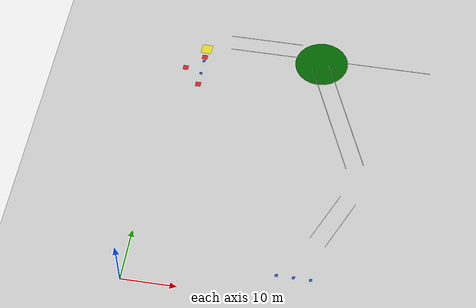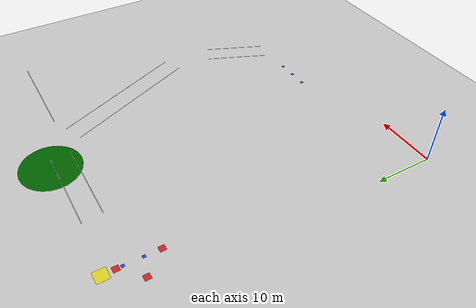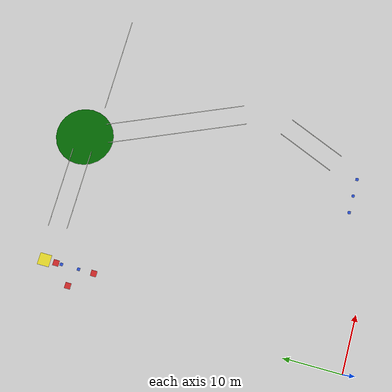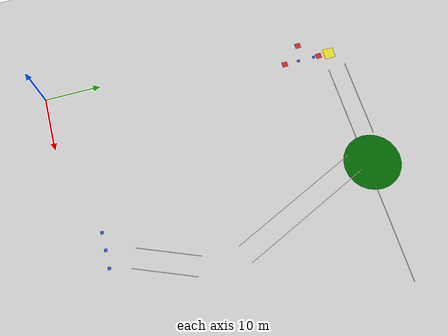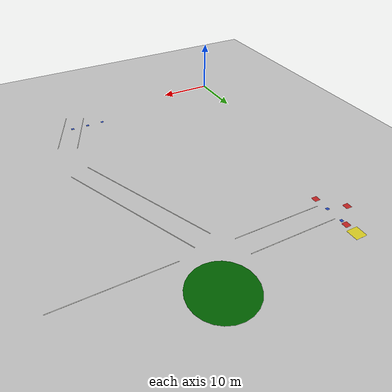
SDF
<sdf version="1.6">
 <world name="default">
  <model name="ground_plane">
   <static>1</static>
   <link name="link">
    <collision name="collision">
     <geometry><plane><normal>0 0 1</normal><size>100 100</size></plane></geometry>
     <surface><friction><ode><mu>100</mu><mu2>50</mu2></ode></friction></surface>
    </collision>
    <visual name="visual">
     <cast_shadows>0</cast_shadows>
     <geometry><plane><normal>0 0 1</normal><size>100 100</size></plane></geometry>
     <material>
      <script><uri>file://media/materials/scripts/gazebo.material</uri><name>Gazebo/Grey</name></script>
     </material>
    </visual>
   </link>
  </model>
  <model name="my_objectT3">
   <link name="my_box">
    <inertial>
     <mass>1</mass>
     <inertia><ixx>1</ixx><ixy>0</ixy><ixz>0</ixz><iyy>100</iyy><iyz>0</iyz><izz>1</izz></inertia>
    </inertial>
    <collision name="my_box_collision"><geometry><box><size>2 2 0.01</size></box></geometry></collision>
    <visual name="my_box_visual">
     <geometry><box><size>2 2 0.01</size></box></geometry>
     <material>
      <script><name>Gazebo/Yellow</name><uri>file://media/materials/scripts/gazebo.material</uri></script>
     </material>
    </visual>
   </link>
   <pose>5.00076 52.4982 0.115002 3e-05 7e-06 -0.000126</pose>
  </model>
  <model name="my_objecteg1w1">
   <link name="my_box">
    <inertial>
     <mass>1</mass>
     <inertia><ixx>1</ixx><ixy>0</ixy><ixz>0</ixz><iyy>100</iyy><iyz>0</iyz><izz>1</izz></inertia>
    </inertial>
    <collision name="my_box_collision"><geometry><box><size>1 1 0.01</size></box></geometry></collision>
    <visual name="my_box_visual">
     <geometry><box><size>1 1 0.01</size></box></geometry>
     <material>
      <script><name>Gazebo/Red</name><uri>file://media/materials/scripts/gazebo.material</uri></script>
     </material>
    </visual>
   </link>
   <pose>1.87822 47.4283 0.105 0 -0 0</pose>
  </model>
  <model name="my_objecteg1w3">
   <link name="my_box">
    <inertial>
     <mass>1</mass>
     <inertia><ixx>1</ixx><ixy>0</ixy><ixz>0</ixz><iyy>100</iyy><iyz>0</iyz><izz>1</izz></inertia>
    </inertial>
    <collision name="my_box_collision"><geometry><box><size>1 1 0.01</size></box></geometry></collision>
    <visual name="my_box_visual">
     <geometry><box><size>1 1 0.01</size></box></geometry>
     <material>
      <script><name>Gazebo/Red</name><uri>file://media/materials/scripts/gazebo.material</uri></script>
     </material>
    </visual>
   </link>
   <pose>5.00058 50.4726 0.104995 0 -0 0.000124</pose>
  </model>
  <model name="my_objecteg4w2">
   <link name="my_box">
    <inertial>
     <mass>1</mass>
     <inertia><ixx>1</ixx><ixy>0</ixy><ixz>0</ixz><iyy>100</iyy><iyz>0</iyz><izz>1</izz></inertia>
    </inertial>
    <collision name="my_box_collision"><geometry><box><size>1 1 0.01</size></box></geometry></collision>
    <visual name="my_box_visual">
     <geometry><box><size>1 1 0.01</size></box></geometry>
     <material>
      <script><name>Gazebo/Red</name><uri>file://media/materials/scripts/gazebo.material</uri></script>
     </material>
    </visual>
   </link>
   <pose>4.98488 43.8517 0.104991 0 -0 0</pose>
  </model>
  <model name="my_objectg2w1">
   <link name="my_box">
    <inertial>
     <mass>1</mass>
     <inertia><ixx>1</ixx><ixy>0</ixy><ixz>0</ixz><iyy>100</iyy><iyz>0</iyz><izz>1</izz></inertia>
    </inertial>
    <collision name="my_box_collision"><geometry><box><size>0.5 0.5 0.01</size></box></geometry></collision>
    <visual name="my_box_visual">
     <geometry><box><size>0.5 0.5 0.01</size></box></geometry>
     <material>
      <script><name>Gazebo/Blue</name><uri>file://media/materials/scripts/gazebo.material</uri></script>
     </material>
    </visual>
   </link>
   <pose>32.4976 5.00481 0.104994 1e-06 0 -0.000205</pose>
  </model>
  <model name="my_objectg2w2">
   <link name="my_box">
    <inertial>
     <mass>1</mass>
     <inertia><ixx>1</ixx><ixy>0</ixy><ixz>0</ixz><iyy>100</iyy><iyz>0</iyz><izz>1</izz></inertia>
    </inertial>
    <collision name="my_box_collision"><geometry><box><size>0.5 0.5 0.01</size></box></geometry></collision>
    <visual name="my_box_visual">
     <geometry><box><size>0.5 0.5 0.01</size></box></geometry>
     <material>
      <script><name>Gazebo/Blue</name><uri>file://media/materials/scripts/gazebo.material</uri></script>
     </material>
    </visual>
   </link>
   <pose>29.497 5.00463 0.104994 1e-06 0 -0.000266</pose>
  </model>
  <model name="my_objectg2w3">
   <link name="my_box">
    <inertial>
     <mass>1</mass>
     <inertia><ixx>1</ixx><ixy>0</ixy><ixz>0</ixz><iyy>100</iyy><iyz>0</iyz><izz>1</izz></inertia>
    </inertial>
    <collision name="my_box_collision"><geometry><box><size>0.5 0.5 0.01</size></box></geometry></collision>
    <visual name="my_box_visual">
     <geometry><box><size>0.5 0.5 0.01</size></box></geometry>
     <material>
      <script><name>Gazebo/Blue</name><uri>file://media/materials/scripts/gazebo.material</uri></script>
     </material>
    </visual>
   </link>
   <pose>26.4965 5.00563 0.104991 -1e-06 -0 -0.00103</pose>
  </model>
  <model name="my_objectg4w2">
   <link name="my_box">
    <inertial>
     <mass>1</mass>
     <inertia><ixx>1</ixx><ixy>0</ixy><ixz>0</ixz><iyy>100</iyy><iyz>0</iyz><izz>1</izz></inertia>
    </inertial>
    <collision name="my_box_collision"><geometry><box><size>0.5 0.5 0.01</size></box></geometry></collision>
    <visual name="my_box_visual">
     <geometry><box><size>0.5 0.5 0.01</size></box></geometry>
     <material>
      <script><name>Gazebo/Blue</name><uri>file://media/materials/scripts/gazebo.material</uri></script>
     </material>
    </visual>
   </link>
   <pose>4.99364 49.5095 0.105 2e-06 -0 -0.000315</pose>
  </model>
  <model name="my_objectg4w3">
   <link name="my_box">
    <inertial>
     <mass>1</mass>
     <inertia><ixx>1</ixx><ixy>0</ixy><ixz>0</ixz><iyy>100</iyy><iyz>0</iyz><izz>1</izz></inertia>
    </inertial>
    <collision name="my_box_collision"><geometry><box><size>0.5 0.5 0.01</size></box></geometry></collision>
    <visual name="my_box_visual">
     <geometry><box><size>0.5 0.5 0.01</size></box></geometry>
     <material>
      <script><name>Gazebo/Blue</name><uri>file://media/materials/scripts/gazebo.material</uri></script>
     </material>
    </visual>
   </link>
   <pose>4.99409 46.509 0.104994 0 0 -0.000408</pose>
  </model>
  <model name="355_clone_0">
   <link name="Wall_12">
    <pose>0 0 0 0 -0 1.17099</pose>
    <gravity>0</gravity>
    <inertial>
     <mass>1</mass>
     <inertia><ixx>1</ixx><ixy>0</ixy><ixz>0</ixz><iyy>1</iyy><iyz>0</iyz><izz>1</izz></inertia>
    </inertial>
    <visual name="Wall_12_Visual">
     <pose>0 0 5 0 -0 0</pose>
     <geometry><box><size>10.2688 0.1 0.01</size></box></geometry>
     <material>
      <script><uri>file://media/materials/scripts/gazebo.material</uri><name>Gazebo/CeilingTiled</name></script>
      <ambient>0.435 0.796 0.675 1</ambient>
      <diffuse>1 1 1 1</diffuse>
      <specular>0 0 0 1</specular>
      <emissive>1 1 0 1</emissive>
      <shader type="vertex"><normal_map>__default__</normal_map></shader>
     </material>
    </visual>
    <collision name="Wall_12_Collision">
     <pose>0 0 1.25 0 -0 0</pose>
     <geometry><box><size>10.2688 0.001 2.5</size></box></geometry>
     <surface>
      <friction>
       <ode><mu>1</mu><mu2>1</mu2><fdir1>0 0 0</fdir1><slip1>0</slip1><slip2>0</slip2></ode>
       <torsional>
        <coefficient>1</coefficient>
        <patch_radius>0</patch_radius>
        <surface_radius>0</surface_radius>
        <use_patch_radius>1</use_patch_radius>
        <ode><slip>0</slip></ode>
       </torsional>
      </friction>
      <bounce><restitution_coefficient>0</restitution_coefficient><threshold>1e+06</threshold></bounce>
      <contact>
       <collide_without_contact>0</collide_without_contact>
       <collide_without_contact_bitmask>1</collide_without_contact_bitmask>
       <collide_bitmask>1</collide_bitmask>
       <ode>
        <soft_cfm>0</soft_cfm>
        <soft_erp>0.2</soft_erp>
        <kp>1e+13</kp>
        <kd>1</kd>
        <max_vel>0.01</max_vel>
        <min_depth>0</min_depth>
       </ode>
       <bullet>
        <split_impulse>1</split_impulse>
        <split_impulse_penetration_threshold>-0.01</split_impulse_penetration_threshold>
        <soft_cfm>0</soft_cfm>
        <soft_erp>0.2</soft_erp>
        <kp>1e+13</kp>
        <kd>1</kd>
       </bullet>
      </contact>
     </surface>
    </collision>
   </link>
   <static>1</static>
   <pose>36.2739 13.8279 0 0 -0 0</pose>
  </model>
  <model name="355_0">
   <link name="Wall_12">
    <pose>0 0 0 0 -0 1.17099</pose>
    <gravity>0</gravity>
    <inertial>
     <mass>1</mass>
     <inertia><ixx>1</ixx><ixy>0</ixy><ixz>0</ixz><iyy>1</iyy><iyz>0</iyz><izz>1</izz></inertia>
    </inertial>
    <visual name="Wall_12_Visual">
     <pose>0 0 5 0 -0 0</pose>
     <geometry><box><size>10.2688 0.1 0.01</size></box></geometry>
     <material>
      <script><uri>file://media/materials/scripts/gazebo.material</uri><name>Gazebo/CeilingTiled</name></script>
      <ambient>0.435 0.796 0.675 1</ambient>
      <diffuse>1 1 1 1</diffuse>
      <specular>0 0 0 1</specular>
      <emissive>1 1 0 1</emissive>
      <shader type="vertex"><normal_map>__default__</normal_map></shader>
     </material>
    </visual>
    <collision name="Wall_12_Collision">
     <pose>0 0 1.25 0 -0 0</pose>
     <geometry><box><size>10.2688 0.001 2.5</size></box></geometry>
     <surface>
      <friction>
       <ode><mu>1</mu><mu2>1</mu2><fdir1>0 0 0</fdir1><slip1>0</slip1><slip2>0</slip2></ode>
       <torsional>
        <coefficient>1</coefficient>
        <patch_radius>0</patch_radius>
        <surface_radius>0</surface_radius>
        <use_patch_radius>1</use_patch_radius>
        <ode><slip>0</slip></ode>
       </torsional>
      </friction>
      <bounce><restitution_coefficient>0</restitution_coefficient><threshold>1e+06</threshold></bounce>
      <contact>
       <collide_without_contact>0</collide_without_contact>
       <collide_without_contact_bitmask>1</collide_without_contact_bitmask>
       <collide_bitmask>1</collide_bitmask>
       <ode>
        <soft_cfm>0</soft_cfm>
        <soft_erp>0.2</soft_erp>
        <kp>1e+13</kp>
        <kd>1</kd>
        <max_vel>0.01</max_vel>
        <min_depth>0</min_depth>
       </ode>
       <bullet>
        <split_impulse>1</split_impulse>
        <split_impulse_penetration_threshold>-0.01</split_impulse_penetration_threshold>
        <soft_cfm>0</soft_cfm>
        <soft_erp>0.2</soft_erp>
        <kp>1e+13</kp>
        <kd>1</kd>
       </bullet>
      </contact>
     </surface>
    </collision>
   </link>
   <static>1</static>
   <pose>33.4162 15.1125 0 0 -0 0</pose>
  </model>
  <model name="351_0_0">
   <link name="Wall_4">
    <pose>0 0 0 0 -0 1.9806</pose>
    <gravity>0</gravity>
    <inertial>
     <mass>1</mass>
     <inertia><ixx>1</ixx><ixy>0</ixy><ixz>0</ixz><iyy>1</iyy><iyz>0</iyz><izz>1</izz></inertia>
    </inertial>
    <visual name="Wall_4_Visual">
     <pose>0 0 5 0 -0 0</pose>
     <geometry><box><size>23.3941 0.1 0.01</size></box></geometry>
     <material>
      <script><uri>file://media/materials/scripts/gazebo.material</uri><name>Gazebo/CeilingTiled</name></script>
      <ambient>0.435 0.796 0.675 1</ambient>
      <diffuse>1 1 1 1</diffuse>
      <specular>0 0 0 1</specular>
      <emissive>1 1 0 1</emissive>
      <shader type="vertex"><normal_map>__default__</normal_map></shader>
     </material>
    </visual>
    <collision name="Wall_4_Collision">
     <pose>0 0 1.25 0 -0 0</pose>
     <geometry><box><size>23.3941 0.001 2.5</size></box></geometry>
     <surface>
      <friction>
       <ode><mu>1</mu><mu2>1</mu2><fdir1>0 0 0</fdir1><slip1>0</slip1><slip2>0</slip2></ode>
       <torsional>
        <coefficient>1</coefficient>
        <patch_radius>0</patch_radius>
        <surface_radius>0</surface_radius>
        <use_patch_radius>1</use_patch_radius>
        <ode><slip>0</slip></ode>
       </torsional>
      </friction>
      <bounce><restitution_coefficient>0</restitution_coefficient><threshold>1e+06</threshold></bounce>
      <contact>
       <collide_without_contact>0</collide_without_contact>
       <collide_without_contact_bitmask>1</collide_without_contact_bitmask>
       <collide_bitmask>1</collide_bitmask>
       <ode>
        <soft_cfm>0</soft_cfm>
        <soft_erp>0.2</soft_erp>
        <kp>1e+13</kp>
        <kd>1</kd>
        <max_vel>0.01</max_vel>
        <min_depth>0</min_depth>
       </ode>
       <bullet>
        <split_impulse>1</split_impulse>
        <split_impulse_penetration_threshold>-0.01</split_impulse_penetration_threshold>
        <soft_cfm>0</soft_cfm>
        <soft_erp>0.2</soft_erp>
        <kp>1e+13</kp>
        <kd>1</kd>
       </bullet>
      </contact>
     </surface>
    </collision>
   </link>
   <static>1</static>
   <pose>33.818 37.6954 0 0 -0 0</pose>
  </model>
  <model name="351_0_clone_0">
   <link name="Wall_4">
    <pose>2e-06 -0 0 0 -0 1.9806</pose>
    <gravity>0</gravity>
    <inertial>
     <mass>1</mass>
     <inertia><ixx>1</ixx><ixy>0</ixy><ixz>0</ixz><iyy>1</iyy><iyz>0</iyz><izz>1</izz></inertia>
    </inertial>
    <visual name="Wall_4_Visual">
     <pose>0 0 5 0 -0 0</pose>
     <geometry><box><size>23.3941 0.1 0.01</size></box></geometry>
     <material>
      <script><uri>file://media/materials/scripts/gazebo.material</uri><name>Gazebo/CeilingTiled</name></script>
      <ambient>0.435 0.796 0.675 1</ambient>
      <diffuse>1 1 1 1</diffuse>
      <specular>0 0 0 1</specular>
      <emissive>1 1 0 1</emissive>
      <shader type="vertex"><normal_map>__default__</normal_map></shader>
     </material>
    </visual>
    <collision name="Wall_4_Collision">
     <pose>0 0 1.25 0 -0 0</pose>
     <geometry><box><size>23.3941 0.001 2.5</size></box></geometry>
     <surface>
      <friction>
       <ode><mu>1</mu><mu2>1</mu2><fdir1>0 0 0</fdir1><slip1>0</slip1><slip2>0</slip2></ode>
       <torsional>
        <coefficient>1</coefficient>
        <patch_radius>0</patch_radius>
        <surface_radius>0</surface_radius>
        <use_patch_radius>1</use_patch_radius>
        <ode><slip>0</slip></ode>
       </torsional>
      </friction>
      <bounce><restitution_coefficient>0</restitution_coefficient><threshold>1e+06</threshold></bounce>
      <contact>
       <collide_without_contact>0</collide_without_contact>
       <collide_without_contact_bitmask>1</collide_without_contact_bitmask>
       <collide_bitmask>1</collide_bitmask>
       <ode>
        <soft_cfm>0</soft_cfm>
        <soft_erp>0.2</soft_erp>
        <kp>1e+13</kp>
        <kd>1</kd>
        <max_vel>0.01</max_vel>
        <min_depth>0</min_depth>
       </ode>
       <bullet>
        <split_impulse>1</split_impulse>
        <split_impulse_penetration_threshold>-0.01</split_impulse_penetration_threshold>
        <soft_cfm>0</soft_cfm>
        <soft_erp>0.2</soft_erp>
        <kp>1e+13</kp>
        <kd>1</kd>
       </bullet>
      </contact>
     </surface>
    </collision>
   </link>
   <static>1</static>
   <pose>30.8667 36.459 0 0 -0 0</pose>
  </model>
  <model name="359_clone_0_0">
   <link name="Wall_20">
    <gravity>0</gravity>
    <inertial>
     <mass>1</mass>
     <inertia><ixx>1</ixx><ixy>0</ixy><ixz>0</ixz><iyy>1</iyy><iyz>0</iyz><izz>1</izz></inertia>
    </inertial>
    <visual name="Wall_20_Visual">
     <pose>0 0 5 0 -0 0</pose>
     <geometry><box><size>16.1 0.1 0.01</size></box></geometry>
     <material>
      <script><uri>file://media/materials/scripts/gazebo.material</uri><name>Gazebo/CeilingTiled</name></script>
      <ambient>0.435 0.796 0.675 1</ambient>
      <diffuse>1 1 1 1</diffuse>
      <specular>0 0 0 1</specular>
      <emissive>1 1 0 1</emissive>
      <shader type="vertex"><normal_map>__default__</normal_map></shader>
     </material>
    </visual>
    <collision name="Wall_20_Collision">
     <pose>0 0 1.25 0 -0 0</pose>
     <geometry><box><size>16.1 0.001 2.5</size></box></geometry>
     <surface>
      <friction>
       <ode><mu>1</mu><mu2>1</mu2><fdir1>0 0 0</fdir1><slip1>0</slip1><slip2>0</slip2></ode>
       <torsional>
        <coefficient>1</coefficient>
        <patch_radius>0</patch_radius>
        <surface_radius>0</surface_radius>
        <use_patch_radius>1</use_patch_radius>
        <ode><slip>0</slip></ode>
       </torsional>
      </friction>
      <bounce><restitution_coefficient>0</restitution_coefficient><threshold>1e+06</threshold></bounce>
      <contact>
       <collide_without_contact>0</collide_without_contact>
       <collide_without_contact_bitmask>1</collide_without_contact_bitmask>
       <collide_bitmask>1</collide_bitmask>
       <ode>
        <soft_cfm>0</soft_cfm>
        <soft_erp>0.2</soft_erp>
        <kp>1e+13</kp>
        <kd>1</kd>
        <max_vel>0.01</max_vel>
        <min_depth>0</min_depth>
       </ode>
       <bullet>
        <split_impulse>1</split_impulse>
        <split_impulse_penetration_threshold>-0.01</split_impulse_penetration_threshold>
        <soft_cfm>0</soft_cfm>
        <soft_erp>0.2</soft_erp>
        <kp>1e+13</kp>
        <kd>1</kd>
       </bullet>
      </contact>
     </surface>
    </collision>
   </link>
   <static>1</static>
   <pose>39.879 49.4738 0 0 -0 0</pose>
  </model>
  <model name="353_0">
   <link name="Wall_10">
    <pose>0 0 0 0 -0 3.14159</pose>
    <gravity>0</gravity>
    <inertial>
     <mass>1</mass>
     <inertia><ixx>1</ixx><ixy>0</ixy><ixz>0</ixz><iyy>1</iyy><iyz>0</iyz><izz>1</izz></inertia>
    </inertial>
    <visual name="Wall_10_Visual">
     <pose>0 0 5 0 -0 0</pose>
     <geometry><box><size>13.45 0.1 0.01</size></box></geometry>
     <material>
      <script><uri>file://media/materials/scripts/gazebo.material</uri><name>Gazebo/CeilingTiled</name></script>
      <ambient>0.435 0.796 0.675 1</ambient>
      <diffuse>1 1 1 1</diffuse>
      <specular>0 0 0 1</specular>
      <emissive>1 1 0 1</emissive>
      <shader type="vertex"><normal_map>__default__</normal_map></shader>
     </material>
    </visual>
    <collision name="Wall_10_Collision">
     <pose>0 0 1.25 0 -0 0</pose>
     <geometry><box><size>13.45 0.001 2.5</size></box></geometry>
     <surface>
      <friction>
       <ode><mu>1</mu><mu2>1</mu2><fdir1>0 0 0</fdir1><slip1>0</slip1><slip2>0</slip2></ode>
       <torsional>
        <coefficient>1</coefficient>
        <patch_radius>0</patch_radius>
        <surface_radius>0</surface_radius>
        <use_patch_radius>1</use_patch_radius>
        <ode><slip>0</slip></ode>
       </torsional>
      </friction>
      <bounce><restitution_coefficient>0</restitution_coefficient><threshold>1e+06</threshold></bounce>
      <contact>
       <collide_without_contact>0</collide_without_contact>
       <collide_without_contact_bitmask>1</collide_without_contact_bitmask>
       <collide_bitmask>1</collide_bitmask>
       <ode>
        <soft_cfm>0</soft_cfm>
        <soft_erp>0.2</soft_erp>
        <kp>1e+13</kp>
        <kd>1</kd>
        <max_vel>0.01</max_vel>
        <min_depth>0</min_depth>
       </ode>
       <bullet>
        <split_impulse>1</split_impulse>
        <split_impulse_penetration_threshold>-0.01</split_impulse_penetration_threshold>
        <soft_cfm>0</soft_cfm>
        <soft_erp>0.2</soft_erp>
        <kp>1e+13</kp>
        <kd>1</kd>
       </bullet>
      </contact>
     </surface>
    </collision>
   </link>
   <static>1</static>
   <pose>16.9056 52.5 0 0 -0 0</pose>
  </model>
  <model name="353_clone_0">
   <link name="Wall_10">
    <pose>0 0 0 0 -0 3.14159</pose>
    <gravity>0</gravity>
    <inertial>
     <mass>1</mass>
     <inertia><ixx>1</ixx><ixy>0</ixy><ixz>0</ixz><iyy>1</iyy><iyz>0</iyz><izz>1</izz></inertia>
    </inertial>
    <visual name="Wall_10_Visual">
     <pose>0 0 5 0 -0 0</pose>
     <geometry><box><size>13.45 0.1 0.01</size></box></geometry>
     <material>
      <script><uri>file://media/materials/scripts/gazebo.material</uri><name>Gazebo/CeilingTiled</name></script>
      <ambient>0.435 0.796 0.675 1</ambient>
      <diffuse>1 1 1 1</diffuse>
      <specular>0 0 0 1</specular>
      <emissive>1 1 0 1</emissive>
      <shader type="vertex"><normal_map>__default__</normal_map></shader>
     </material>
    </visual>
    <collision name="Wall_10_Collision">
     <pose>0 0 1.25 0 -0 0</pose>
     <geometry><box><size>13.45 0.001 2.5</size></box></geometry>
     <surface>
      <friction>
       <ode><mu>1</mu><mu2>1</mu2><fdir1>0 0 0</fdir1><slip1>0</slip1><slip2>0</slip2></ode>
       <torsional>
        <coefficient>1</coefficient>
        <patch_radius>0</patch_radius>
        <surface_radius>0</surface_radius>
        <use_patch_radius>1</use_patch_radius>
        <ode><slip>0</slip></ode>
       </torsional>
      </friction>
      <bounce><restitution_coefficient>0</restitution_coefficient><threshold>1e+06</threshold></bounce>
      <contact>
       <collide_without_contact>0</collide_without_contact>
       <collide_without_contact_bitmask>1</collide_without_contact_bitmask>
       <collide_bitmask>1</collide_bitmask>
       <ode>
        <soft_cfm>0</soft_cfm>
        <soft_erp>0.2</soft_erp>
        <kp>1e+13</kp>
        <kd>1</kd>
        <max_vel>0.01</max_vel>
        <min_depth>0</min_depth>
       </ode>
       <bullet>
        <split_impulse>1</split_impulse>
        <split_impulse_penetration_threshold>-0.01</split_impulse_penetration_threshold>
        <soft_cfm>0</soft_cfm>
        <soft_erp>0.2</soft_erp>
        <kp>1e+13</kp>
        <kd>1</kd>
       </bullet>
      </contact>
     </surface>
    </collision>
   </link>
   <static>1</static>
   <pose>17.2103 49.4178 0 0 -0 0</pose>
  </model>
  <model name="unit_cylinder_0_3_clone_clone">
   <link name="link">
    <inertial>
     <mass>1</mass>
     <inertia><ixx>0.145833</ixx><ixy>0</ixy><ixz>0</ixz><iyy>0.145833</iyy><iyz>0</iyz><izz>0.125</izz></inertia>
    </inertial>
    <gravity>0</gravity>
    <visual name="visual">
     <geometry><cylinder><radius>5</radius><length>0.01</length></cylinder></geometry>
     <material>
      <script><name>Gazebo/Grey</name><uri>file://media/materials/scripts/gazebo.material</uri></script>
      <ambient>0 0.4 0 0</ambient>
      <diffuse>0 0.4 0 0</diffuse>
      <specular>0 0.41 0 0</specular>
      <emissive>0 0.4 0 0</emissive>
      <shader type="vertex"><normal_map>__default__</normal_map></shader>
     </material>
    </visual>
   </link>
   <static>0</static>
   <pose>27.2881 52.3623 0.2 0 -0 0</pose>
  </model>
 </world>
</sdf>
